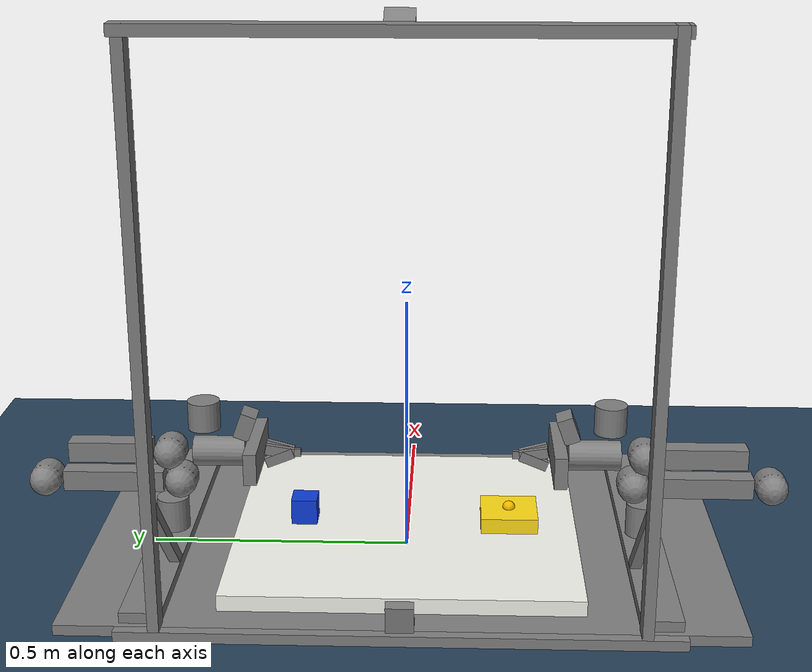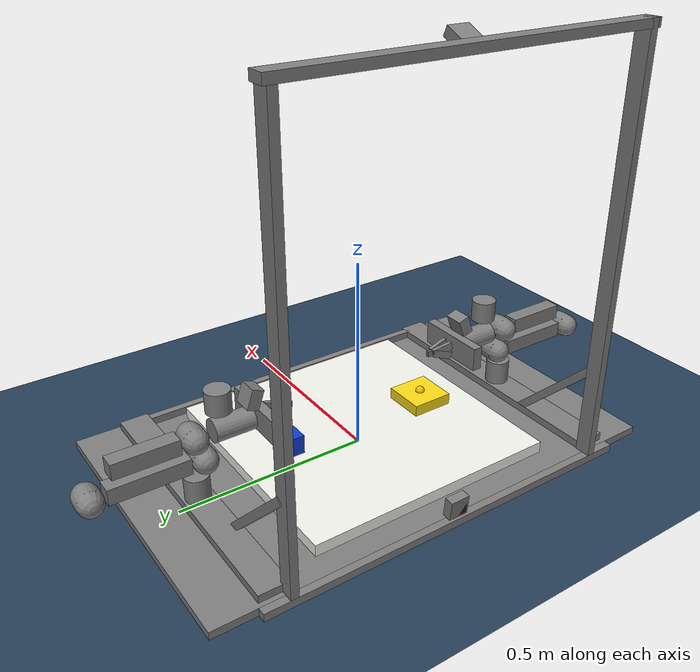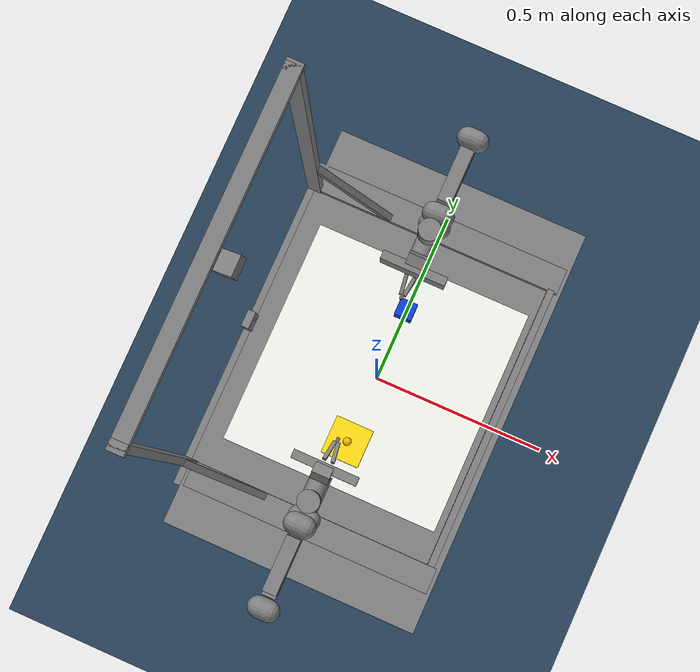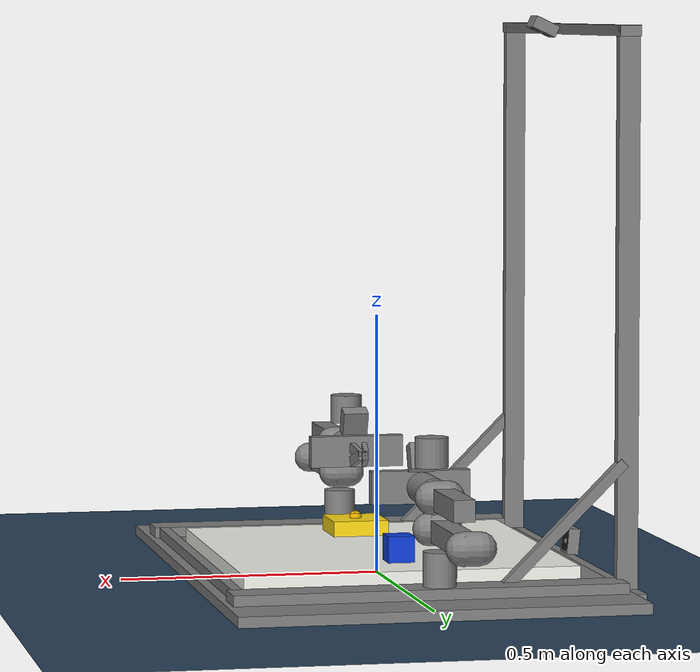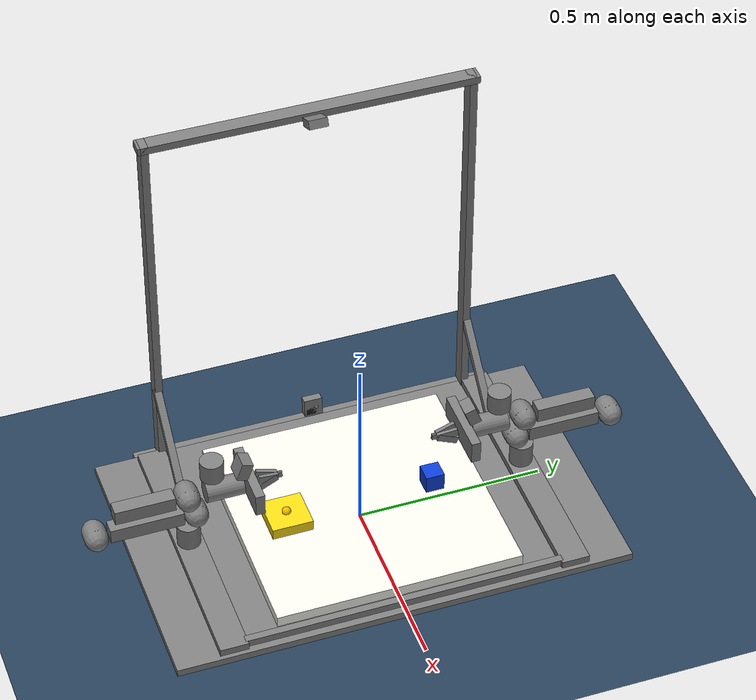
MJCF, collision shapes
<mujoco model="glassego block jamming stationary">
  <compiler angle="radian" meshdir="/home/huasan/trossen_arm_mujoco/trossen_arm_mujoco/assets/meshes" texturedir="/home/huasan/trossen_arm_mujoco/trossen_arm_mujoco/assets"/>

  <option integrator="implicitfast"/>

  <size nkey="1"/>

  <statistic extent="0.6" center="0 0 0.1"/>

  <visual>
    <global azimuth="160" elevation="-20"/>
    <headlight ambient="0.3 0.3 0.3" diffuse="0.6 0.6 0.6" specular="0 0 0"/>
    <rgba haze="0.15 0.25 0.35 1"/>
  </visual>

  <default>
    <default class="visual">
      <geom type="mesh" contype="0" conaffinity="0" group="2" material="trossen_black"/>
    </default>
    <default class="collision">
      <geom type="cylinder" group="3"/>
    </default>
  </default>

  <asset>
    <texture type="2d" colorspace="linear" name="maple_tabletop" file="maple_tabletop.png"/>
    <texture type="skybox" colorspace="auto" builtin="gradient" rgb1="0.3 0.5 0.7" rgb2="0 0 0" width="512" height="3072"/>
    <texture type="2d" colorspace="auto" name="groundplane" builtin="checker" mark="edge" rgb1="0.2 0.3 0.4" rgb2="0.1 0.2 0.3" markrgb="0.8 0.8 0.8" width="300" height="300"/>
    <material name="trossen_black" rgba="0.1 0.1 0.1 1"/>
    <material name="maple" texture="maple_tabletop"/>
    <material name="groundplane" texture="groundplane" texrepeat="5 5" texuniform="true" reflectance="0.2"/>
    <mesh name="tabletop_link" content_type="model/stl" file="tabletop_link.stl"/>
    <mesh name="frame_link" content_type="model/stl" file="frame_link.stl"/>
    <mesh name="cam_high_mount_link" content_type="model/stl" file="cam_high_mount_link.stl"/>
    <mesh name="cam_low_mount_link" content_type="model/stl" file="cam_low_mount_link.stl"/>
    <mesh name="base_link" content_type="model/stl" file="base_link.stl"/>
    <mesh name="link_1" content_type="model/stl" file="link_1.stl"/>
    <mesh name="link_2" content_type="model/stl" file="link_2.stl"/>
    <mesh name="link_3" content_type="model/stl" file="link_3.stl"/>
    <mesh name="link_4" content_type="model/stl" file="link_4.stl"/>
    <mesh name="link_5" content_type="model/stl" file="link_5.stl"/>
    <mesh name="link_6" content_type="model/stl" file="link_6.stl"/>
    <mesh name="carriage_right" content_type="model/stl" file="carriage_right.stl"/>
    <mesh name="carriage_left" content_type="model/stl" file="carriage_left.stl"/>
    <mesh name="camera_mount_d405" content_type="model/stl" file="camera_mount_d405.stl"/>
    <mesh name="d405" content_type="model/stl" file="d405.stl" scale="0.001 0.001 0.001"/>
    <mesh name="gripper_left" content_type="model/stl" file="gripper_left.stl"/>
    <mesh name="gripper_right" content_type="model/stl" file="gripper_right.stl"/>
  </asset>

  <worldbody>
    <geom name="floor" size="0 0 0.05" type="plane" material="groundplane"/>
    <geom name="task_table" size="0.32 0.33 0.015" pos="0 0 0.035" type="box" friction="1.2 0.02 0.001" rgba="0.96 0.96 0.93 1"/>
    <camera name="task_overview" quat="0.815941 0.488254 0.15897 0.265662" pos="0.55 -0.75 0.55" fovy="48"/>
    <light pos="0 0 1.5" type="directional"/>
    <body name="tabletop_link">
      <inertial pos="-0.00537488 -0.000426868 0.0141047" quat="0.135549 0.672695 0.710793 0.154534" mass="15.2" diaginertia="0.301156 0.287827 0.165329"/>
      <geom class="visual" material="maple" mesh="tabletop_link"/>
      <geom name="tabletop" class="collision" size="0.38 0.61 0.01" pos="0 0 0.01" type="box"/>
      <geom class="visual" pos="0 0 0.02" mesh="frame_link"/>
      <geom class="collision" size="0.3685 0.0375 0.01" pos="0 0.457 0.03" type="box"/>
      <geom class="collision" size="0.3685 0.0375 0.01" pos="0 -0.457 0.03" type="box"/>
      <geom class="collision" size="0.01 0.425 0.01" pos="0.35 0 0.03" type="box"/>
      <geom class="collision" size="0.01 0.5 0.01" pos="-0.39 0 0.01" type="box"/>
      <geom class="collision" size="0.02 0.445 0.01" pos="-0.38 0 1.05" type="box"/>
      <geom class="collision" size="0.02 0.01 0.52" pos="-0.38 0.42774 0.54" type="box"/>
      <geom class="collision" size="0.02 0.01 0.52" pos="-0.38 -0.42774 0.54" type="box"/>
      <geom class="collision" size="0.01 0.01 0.16" pos="-0.261 0.43 0.1425" quat="0.92388 0 -0.382683 0" type="box"/>
      <geom class="collision" size="0.01 0.01 0.16" pos="-0.261 -0.43 0.1425" quat="0.92388 0 -0.382683 0" type="box"/>
      <geom class="visual" pos="-0.401982 -0.04 1.07985" quat="0 -0.707107 -0.707107 0" mesh="cam_high_mount_link"/>
      <geom class="collision" size="0.0115 0.025 0.025" pos="-0.328972 0 1.05484" quat="0.843391 0 0.5373 0" type="box"/>
      <geom class="visual" size="0.0115 0.021 0.021" pos="-0.327972 0 1.05484" quat="0.843391 0 0.5373 0" type="box"/>
      <geom class="visual" pos="-0.415 -0.024884 0.064061" quat="0 -0.707107 -0.707107 0" mesh="cam_low_mount_link"/>
      <geom class="collision" size="0.0115 0.025 0.025" pos="-0.388301 0 0.0513276" quat="0.998848 0 -0.0479781 0" type="box"/>
      <geom class="visual" size="0.0115 0.021 0.021" pos="-0.388301 0 0.0513276" quat="0.998848 0 -0.0479781 0" type="box"/>
      <site name="cam_high_color_frame" quat="0.843394 0 0.537296 0" pos="-0.324675 0.009 1.04777"/>
      <site name="cam_low_color_frame" quat="0.998847 0 -0.0480023 0" pos="-0.378474 0.009 0.051132"/>
      <camera name="cam_high" quat="-0.690358 -0.152991 0.152991 0.690358" pos="-0.324675 0.009 1.04777" fovy="65"/>
      <camera name="cam_low" quat="-0.475422 -0.523425 0.523425 0.475422" pos="-0.378474 0.009 0.051132" fovy="125"/>
      <body name="follower_left_base_link" pos="-0.019982 0.4575 0.039086" quat="0.707107 0 0 -0.707107" gravcomp="1">
        <inertial pos="-0.00014175 -5.228e-05 0.0317518" quat="0.503748 -0.50738 -0.49423 -0.49451" mass="0.459699" diaginertia="0.000213926 0.000416701 0.000448963"/>
        <geom class="visual" mesh="base_link"/>
        <geom class="collision" size="0.031 0.0325" pos="0 0 0.0325"/>
        <body name="follower_left_link_1" pos="0 0 0.05725" gravcomp="1">
          <inertial pos="-0.00011075 0.00171176 0.0204459" quat="0.313955 0.305238 -0.643575 0.627752" mass="0.152704" diaginertia="0.000203432 0.000173907 8.3521e-05"/>
          <joint name="follower_left_joint_0" range="-3.05433 3.05433" actuatorgravcomp="true" armature="0.032" frictionloss="0.1"/>
          <geom class="visual" mesh="link_1"/>
          <body name="follower_left_link_2" pos="0.02 0 0.04625" gravcomp="1">
            <inertial pos="-0.131215 -0.00292583 0.00021345" quat="-0.00123582 0.706546 -0.00109575 0.707665" mass="1.15316" diaginertia="0.0179449 0.0173612 0.00102628"/>
            <joint name="follower_left_joint_1" range="0 3.14159" actuatorgravcomp="true" armature="0.032" frictionloss="0.1" axis="0 1 0"/>
            <geom class="visual" mesh="link_2"/>
            <geom class="collision" size="0.031 0.015" quat="0.707107 0.707107 0 0" type="capsule"/>
            <geom class="collision" size="0.0975 0.02 0.02" pos="-0.131 0 0" type="box"/>
            <body name="follower_left_link_3" pos="-0.264 0 0" gravcomp="1">
              <inertial pos="0.180836 -0.0009409 0.0555494" quat="0.0103901 0.669684 -0.0033175 0.742566" mass="0.686666" diaginertia="0.00566898 0.00547578 0.00059316"/>
              <joint name="follower_left_joint_2" range="0 2.35619" actuatorgravcomp="true" armature="0.032" frictionloss="0.1" axis="0 -1 0"/>
              <geom class="visual" mesh="link_3"/>
              <geom class="collision" size="0.031 0.015" quat="0.707107 0.707107 0 0" type="capsule"/>
              <geom class="collision" size="0.08 0.02 0.02" pos="0.13 0 0.06" type="box"/>
              <body name="follower_left_link_4" pos="0.245 0 0.06" gravcomp="1">
                <inertial pos="0.0579784 0.00027145 0.0588445" quat="0.948688 0.0346237 0.307828 0.0635164" mass="0.457899" diaginertia="0.000670827 0.000661455 0.000288648"/>
                <joint name="follower_left_joint_3" range="-1.5708 1.5708" actuatorgravcomp="true" armature="0.0018" frictionloss="0.1" axis="0 -1 0"/>
                <geom class="visual" mesh="link_4"/>
                <geom class="collision" size="0.031 0.015" quat="0.707107 0.707107 0 0" type="capsule"/>
                <body name="follower_left_link_5" pos="0.06775 0 0.0455" gravcomp="1">
                  <inertial pos="0.00412447 -1.138e-05 -0.0428318" quat="0.496144 0.502128 0.503595 0.498098" mass="0.366939" diaginertia="0.000320622 0.00026751 0.000189108"/>
                  <joint name="follower_left_joint_4" range="-1.5708 1.5708" actuatorgravcomp="true" armature="0.0018" frictionloss="0.1" axis="0 0 -1"/>
                  <geom class="visual" mesh="link_5"/>
                  <geom class="collision" size="0.031 0.028" pos="0 0 0.03"/>
                  <body name="follower_left_link_6" pos="0.02895 0 -0.0455" gravcomp="1">
                    <inertial pos="0.046841 0.00145133 0.00895674" quat="0.275854 0.291255 -0.691957 0.600225" mass="0.671874" diaginertia="0.00118316 0.00110863 0.00078309"/>
                    <joint name="follower_left_joint_5" range="-3.14159 3.14159" actuatorgravcomp="true" armature="0.0018" frictionloss="0.1" axis="1 0 0"/>
                    <geom class="visual" mesh="link_6"/>
                    <geom class="collision" size="0.029 0.05" quat="0.707107 0 0.707107 0"/>
                    <geom class="collision" size="0.0125 0.094 0.031" pos="0.0685 0 0" type="box"/>
                    <geom class="visual" pos="0.012 0 0" quat="1 0 0 0" mesh="camera_mount_d405"/>
                    <geom class="collision" size="0.0155 0.025 0.025" pos="0.0513206 0 0.0569399" quat="0.984808 0 0.173648 0" type="box"/>
                    <geom class="visual" size="0.0115 0.021 0.021" pos="0.0513206 0 0.0569399" quat="0.984808 0 0.173648 0" type="box"/>
                    <site name="follower_left_ee_site" size="0.001" pos="0.156 0 0"/>
                    <site name="follower_left_camera_color_frame" quat="0.984808 0 0.173648 0" pos="0.05864 0.009 0.05427"/>
                    <camera name="cam_left_wrist" quat="0.579242 0.40556 -0.40556 -0.579242" pos="0.05864 0.009 0.05427" fovy="87"/>
                    <body name="follower_left_carriage_right" pos="0.0865 -0.023 0" gravcomp="1">
                      <inertial pos="0.00169015 0.00592793 0.00201817" quat="-0.370973 0.740886 -0.0847721 0.553427" mass="0.081271" diaginertia="4.29565e-05 3.87081e-05 2.21528e-05"/>
                      <joint name="follower_left_right_carriage_joint" type="slide" range="0 0.044" actuatorgravcomp="true" armature="0.1" frictionloss="0.1" axis="0 -1 0"/>
                      <geom class="visual" mesh="carriage_right"/>
                      <geom class="visual" mesh="gripper_right"/>
                      <geom name="follower_left_gripper_right_pad_upper" class="collision" size="0.0275 0.005 0.01" pos="0.0286 0.01436 0.0037" quat="0.99257 -0.00451 0.10246 0.06547" type="box"/>
                      <geom name="follower_left_gripper_right_pad_lower" class="collision" size="0.0275 0.005 0.01" pos="0.0285 0.01429 -0.00973" quat="0.98344 0.0133 -0.16893 0.06427" type="box"/>
                      <geom name="follower_left_gripper_right_tip" class="collision" size="0.00732 0.00214 0.00767" pos="0.0622 0.02083 -0.00105" type="box"/>
                    </body>
                    <body name="follower_left_carriage_left" pos="0.0865 0.023 0" gravcomp="1">
                      <inertial pos="0.00169017 -0.00592796 -0.00365701" quat="-0.0382691 0.628022 -0.255101 0.734198" mass="0.081271" diaginertia="4.21112e-05 3.61943e-05 2.40003e-05"/>
                      <joint name="follower_left_left_carriage_joint" type="slide" range="0 0.044" actuatorgravcomp="true" armature="0.1" frictionloss="0.1" axis="0 1 0"/>
                      <geom class="visual" mesh="carriage_left"/>
                      <geom class="visual" mesh="gripper_left"/>
                      <geom name="follower_left_gripper_left_pad_upper" class="collision" size="0.0275 0.005 0.01" pos="0.0286 -0.01436 0.0037" quat="0.99257 0.00451 0.10246 -0.06547" type="box"/>
                      <geom name="follower_left_gripper_left_pad_lower" class="collision" size="0.0275 0.005 0.01" pos="0.0285 -0.01429 -0.00973" quat="0.98344 -0.0133 -0.16893 -0.06427" type="box"/>
                      <geom name="follower_left_gripper_left_tip" class="collision" size="0.00732 0.00214 0.00767" pos="0.0622 -0.02083 -0.00105" type="box"/>
                    </body>
                  </body>
                </body>
              </body>
            </body>
          </body>
        </body>
      </body>
      <body name="follower_right_base_link" pos="-0.019982 -0.4575 0.039086" quat="0.707107 0 0 0.707107" gravcomp="1">
        <inertial pos="-0.00014175 -5.228e-05 0.0317518" quat="0.503748 -0.50738 -0.49423 -0.49451" mass="0.459699" diaginertia="0.000213926 0.000416701 0.000448963"/>
        <geom class="visual" mesh="base_link"/>
        <geom class="collision" size="0.031 0.0325" pos="0 0 0.0325"/>
        <body name="follower_right_link_1" pos="0 0 0.05725" gravcomp="1">
          <inertial pos="-0.00011075 0.00171176 0.0204459" quat="0.313955 0.305238 -0.643575 0.627752" mass="0.152704" diaginertia="0.000203432 0.000173907 8.3521e-05"/>
          <joint name="follower_right_joint_0" range="-3.05433 3.05433" actuatorgravcomp="true" armature="0.032" frictionloss="0.1"/>
          <geom class="visual" mesh="link_1"/>
          <body name="follower_right_link_2" pos="0.02 0 0.04625" gravcomp="1">
            <inertial pos="-0.131215 -0.00292583 0.00021345" quat="-0.00123582 0.706546 -0.00109575 0.707665" mass="1.15316" diaginertia="0.0179449 0.0173612 0.00102628"/>
            <joint name="follower_right_joint_1" range="0 3.14159" actuatorgravcomp="true" armature="0.032" frictionloss="0.1" axis="0 1 0"/>
            <geom class="visual" mesh="link_2"/>
            <geom class="collision" size="0.031 0.015" quat="0.707107 0.707107 0 0" type="capsule"/>
            <geom class="collision" size="0.0975 0.02 0.02" pos="-0.131 0 0" type="box"/>
            <body name="follower_right_link_3" pos="-0.264 0 0" gravcomp="1">
              <inertial pos="0.180836 -0.0009409 0.0555494" quat="0.0103901 0.669684 -0.0033175 0.742566" mass="0.686666" diaginertia="0.00566898 0.00547578 0.00059316"/>
              <joint name="follower_right_joint_2" range="0 2.35619" actuatorgravcomp="true" armature="0.032" frictionloss="0.1" axis="0 -1 0"/>
              <geom class="visual" mesh="link_3"/>
              <geom class="collision" size="0.031 0.015" quat="0.707107 0.707107 0 0" type="capsule"/>
              <geom class="collision" size="0.08 0.02 0.02" pos="0.13 0 0.06" type="box"/>
              <body name="follower_right_link_4" pos="0.245 0 0.06" gravcomp="1">
                <inertial pos="0.0579784 0.00027145 0.0588445" quat="0.948688 0.0346237 0.307828 0.0635164" mass="0.457899" diaginertia="0.000670827 0.000661455 0.000288648"/>
                <joint name="follower_right_joint_3" range="-1.5708 1.5708" actuatorgravcomp="true" armature="0.0018" frictionloss="0.1" axis="0 -1 0"/>
                <geom class="visual" mesh="link_4"/>
                <geom class="collision" size="0.031 0.015" quat="0.707107 0.707107 0 0" type="capsule"/>
                <body name="follower_right_link_5" pos="0.06775 0 0.0455" gravcomp="1">
                  <inertial pos="0.00412447 -1.138e-05 -0.0428318" quat="0.496144 0.502128 0.503595 0.498098" mass="0.366939" diaginertia="0.000320622 0.00026751 0.000189108"/>
                  <joint name="follower_right_joint_4" range="-1.5708 1.5708" actuatorgravcomp="true" armature="0.0018" frictionloss="0.1" axis="0 0 -1"/>
                  <geom class="visual" mesh="link_5"/>
                  <geom class="collision" size="0.031 0.028" pos="0 0 0.03"/>
                  <body name="follower_right_link_6" pos="0.02895 0 -0.0455" gravcomp="1">
                    <inertial pos="0.046841 0.00145133 0.00895674" quat="0.275854 0.291255 -0.691957 0.600225" mass="0.671874" diaginertia="0.00118316 0.00110863 0.00078309"/>
                    <joint name="follower_right_joint_5" range="-3.14159 3.14159" actuatorgravcomp="true" armature="0.0018" frictionloss="0.1" axis="1 0 0"/>
                    <geom class="visual" mesh="link_6"/>
                    <geom class="collision" size="0.029 0.05" quat="0.707107 0 0.707107 0"/>
                    <geom class="collision" size="0.0125 0.094 0.031" pos="0.0685 0 0" type="box"/>
                    <geom class="visual" pos="0.012 0 0" quat="1 0 0 0" mesh="camera_mount_d405"/>
                    <geom class="collision" size="0.0155 0.025 0.025" pos="0.0513206 0 0.0569399" quat="0.984808 0 0.173648 0" type="box"/>
                    <geom class="visual" size="0.0115 0.021 0.021" pos="0.0513206 0 0.0569399" quat="0.984808 0 0.173648 0" type="box"/>
                    <site name="follower_right_ee_site" size="0.001" pos="0.156 0 0"/>
                    <site name="follower_right_camera_color_frame" quat="0.984808 0 0.173648 0" pos="0.05864 0.009 0.05427"/>
                    <camera name="cam_right_wrist" quat="0.579242 0.40556 -0.40556 -0.579242" pos="0.05864 0.009 0.05427" fovy="87"/>
                    <body name="follower_right_carriage_right" pos="0.0865 -0.023 0" gravcomp="1">
                      <inertial pos="0.00169015 0.00592793 0.00201817" quat="-0.370973 0.740886 -0.0847721 0.553427" mass="0.081271" diaginertia="4.29565e-05 3.87081e-05 2.21528e-05"/>
                      <joint name="follower_right_right_carriage_joint" type="slide" range="0 0.044" actuatorgravcomp="true" armature="0.1" frictionloss="0.1" axis="0 -1 0"/>
                      <geom class="visual" mesh="carriage_right"/>
                      <geom class="visual" mesh="gripper_right"/>
                      <geom name="follower_right_gripper_right_pad_upper" class="collision" size="0.0275 0.005 0.01" pos="0.0286 0.01436 0.0037" quat="0.99257 -0.00451 0.10246 0.06547" type="box"/>
                      <geom name="follower_right_gripper_right_pad_lower" class="collision" size="0.0275 0.005 0.01" pos="0.0285 0.01429 -0.00973" quat="0.98344 0.0133 -0.16893 0.06427" type="box"/>
                      <geom name="follower_right_gripper_right_tip" class="collision" size="0.00732 0.00214 0.00767" pos="0.0622 0.02083 -0.00105" type="box"/>
                    </body>
                    <body name="follower_right_carriage_left" pos="0.0865 0.023 0" gravcomp="1">
                      <inertial pos="0.00169017 -0.00592796 -0.00365701" quat="-0.0382691 0.628022 -0.255101 0.734198" mass="0.081271" diaginertia="4.21112e-05 3.61943e-05 2.40003e-05"/>
                      <joint name="follower_right_left_carriage_joint" type="slide" range="0 0.044" actuatorgravcomp="true" armature="0.1" frictionloss="0.1" axis="0 1 0"/>
                      <geom class="visual" mesh="carriage_left"/>
                      <geom class="visual" mesh="gripper_left"/>
                      <geom name="follower_right_gripper_left_pad_upper" class="collision" size="0.0275 0.005 0.01" pos="0.0286 -0.01436 0.0037" quat="0.99257 0.00451 0.10246 -0.06547" type="box"/>
                      <geom name="follower_right_gripper_left_pad_lower" class="collision" size="0.0275 0.005 0.01" pos="0.0285 -0.01429 -0.00973" quat="0.98344 -0.0133 -0.16893 -0.06427" type="box"/>
                      <geom name="follower_right_gripper_left_tip" class="collision" size="0.00732 0.00214 0.00767" pos="0.0622 -0.02083 -0.00105" type="box"/>
                    </body>
                  </body>
                </body>
              </body>
            </body>
          </body>
        </body>
      </body>
    </body>
    <body name="target_box" pos="0 -0.2 0.065">
      <geom name="target_box_geom" size="0.055 0.055 0.015" type="box" friction="1.5 0.02 0.001" rgba="1 0.86 0.08 1"/>
      <site name="target_site" size="0.012" pos="0 0 0.017" rgba="1 0.75 0 0.8"/>
    </body>
    <body name="block" pos="0 0.2 0.075">
      <joint name="block_freejoint" type="free"/>
      <geom name="block_geom" size="0.025 0.025 0.025" type="box" condim="4" friction="2 0.03 0.001" solref="0.01" rgba="0.05 0.24 0.85 1" mass="0.05"/>
      <site name="block_grasp_site" size="0.008" rgba="1 1 1 0.6"/>
    </body>
  </worldbody>

  <equality>
    <joint joint1="follower_left_right_carriage_joint" joint2="follower_left_left_carriage_joint"/>
    <joint joint1="follower_right_right_carriage_joint" joint2="follower_right_left_carriage_joint"/>
  </equality>

  <actuator>
    <general name="follower_left_joint_0" joint="follower_left_joint_0" ctrlrange="-3.05433 3.05433" forcerange="-27 27" biastype="affine" gainprm="200" biasprm="0 -200 -10"/>
    <general name="follower_left_joint_1" joint="follower_left_joint_1" ctrlrange="0 3.14159" forcerange="-27 27" biastype="affine" gainprm="200" biasprm="0 -200 -10"/>
    <general name="follower_left_joint_2" joint="follower_left_joint_2" ctrlrange="0 2.35619" forcerange="-27 27" biastype="affine" gainprm="200" biasprm="0 -200 -10"/>
    <general name="follower_left_joint_3" joint="follower_left_joint_3" ctrlrange="-1.5708 1.5708" forcerange="-7 7" biastype="affine" gainprm="100" biasprm="0 -100 -5"/>
    <general name="follower_left_joint_4" joint="follower_left_joint_4" ctrlrange="-1.5708 1.5708" forcerange="-7 7" biastype="affine" gainprm="50" biasprm="0 -50 -5"/>
    <general name="follower_left_joint_5" joint="follower_left_joint_5" ctrlrange="-3.14159 3.14159" forcerange="-7 7" biastype="affine" gainprm="50" biasprm="0 -50 -5"/>
    <general name="follower_left_gripper" joint="follower_left_left_carriage_joint" ctrlrange="0 0.044" forcerange="-400 400" biastype="affine" gainprm="1000" biasprm="0 -1000 -50"/>
    <general name="follower_right_joint_0" joint="follower_right_joint_0" ctrlrange="-3.05433 3.05433" forcerange="-27 27" biastype="affine" gainprm="200" biasprm="0 -200 -10"/>
    <general name="follower_right_joint_1" joint="follower_right_joint_1" ctrlrange="0 3.14159" forcerange="-27 27" biastype="affine" gainprm="200" biasprm="0 -200 -10"/>
    <general name="follower_right_joint_2" joint="follower_right_joint_2" ctrlrange="0 2.35619" forcerange="-27 27" biastype="affine" gainprm="200" biasprm="0 -200 -10"/>
    <general name="follower_right_joint_3" joint="follower_right_joint_3" ctrlrange="-1.5708 1.5708" forcerange="-7 7" biastype="affine" gainprm="100" biasprm="0 -100 -5"/>
    <general name="follower_right_joint_4" joint="follower_right_joint_4" ctrlrange="-1.5708 1.5708" forcerange="-7 7" biastype="affine" gainprm="50" biasprm="0 -50 -5"/>
    <general name="follower_right_joint_5" joint="follower_right_joint_5" ctrlrange="-3.14159 3.14159" forcerange="-7 7" biastype="affine" gainprm="50" biasprm="0 -50 -5"/>
    <general name="follower_right_gripper" joint="follower_right_left_carriage_joint" ctrlrange="0 0.044" forcerange="-400 400" biastype="affine" gainprm="1000" biasprm="0 -1000 -50"/>
  </actuator>

  <keyframe>
    <key name="home" qpos="0 0 0 0 0 0 0 0 0 0 0 0 0 0 0 0 0 0 0 0 0 0 0"/>
  </keyframe>
</mujoco>
